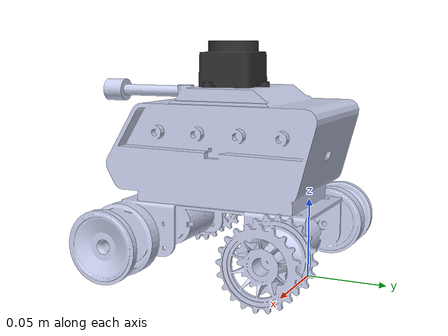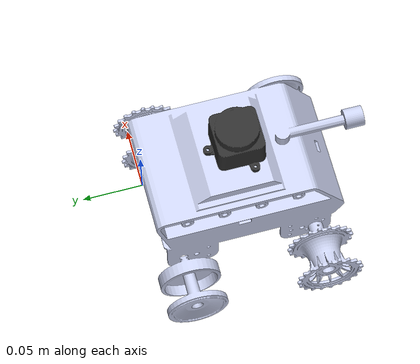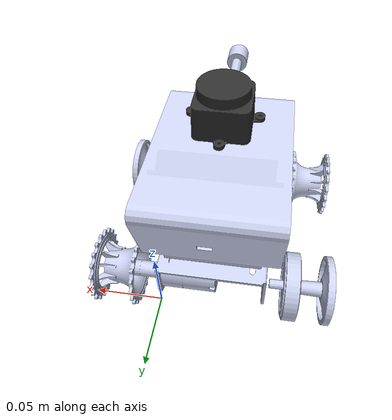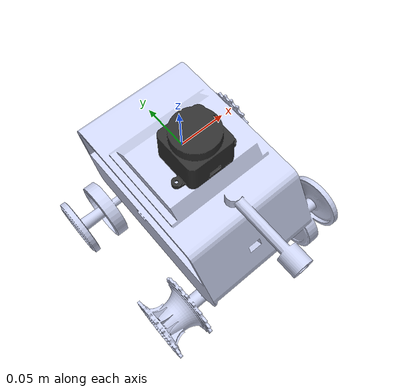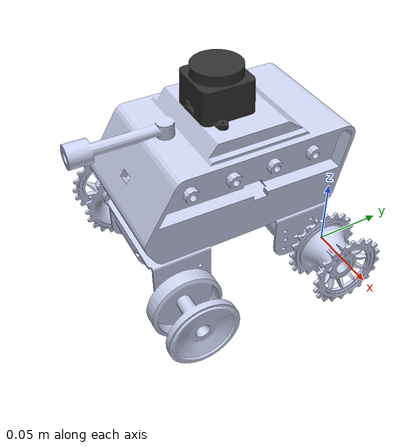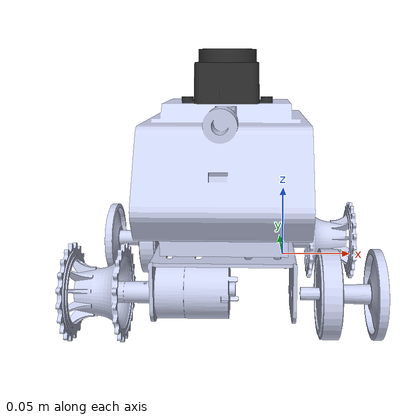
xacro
<?xml version="1.0"?>
<robot xmlns:xacro="http://www.ros.org/wiki/xacro" name="tanque">

  <!-- Define properties -->
  <xacro:property name="wheel_separation" value="0.7" />
  <xacro:property name="wheel_radius" value="0.025" />
  <xacro:property name="color_rgba" value="0.792156862745098 0.819607843137255 0.933333333333333 1" />
  <xacro:property name="dark_color_rgba" value="0.180392156862745 0.180392156862745 0.180392156862745 1" />
  <xacro:include filename="$(find mec_mobile_description)/urdf/control/tank_robot.gazebo"/>

  <!-- Base link -->
  <xacro:macro name="base_link" params="">
    <link name="base_link">
      <inertial>
        <origin xyz="-0.0374465940598886 -0.0690310743778639 0.0558880866808287" rpy="0 0 0" />
        <mass value="0.417099374990471" />
        <inertia
          ixx="0.000722351549815063" ixy="1.62332665545551E-06" ixz="3.11612693032546E-06"
          iyy="0.000404208619519167" iyz="-2.03306255326123E-05" izz="0.000904108489026081" />
      </inertial>
      <visual>
        <origin xyz="0 0 0" rpy="0 0 0" />
        <geometry>
          <mesh filename="file://$(find mec_mobile_description)/meshes/robot_tank/base_link.STL" />
        </geometry>
        <material name="">
          <color rgba="${color_rgba}" />
        </material>
      </visual>
      <collision>
        <origin xyz="0 0 0" rpy="0 0 0" />
        <geometry>
          <mesh filename="file://$(find mec_mobile_description)/meshes/robot_tank/base_link.STL" />
        </geometry>
      </collision>
    </link>
  </xacro:macro>

  <!-- Wheel -->
  <xacro:macro name="wheel" params="name xyz rpy parent_link mesh_file">
    <link name="${name}_Link">
      <inertial>
        <origin xyz="0 0 0.00608657321281263" rpy="0 0 0" />
        <mass value="0.0148833367293959" />
        <inertia
          ixx="2.87985049038713E-06" ixy="1.33235120631602E-09" ixz="7.78715693348932E-10"
          iyy="2.87526106782234E-06" iyz="-2.89204738153876E-09" izz="3.16386827888893E-06" />
      </inertial>
      <visual>
        <origin xyz="0 0 0" rpy="0 0 0" />
        <geometry>
          <mesh filename="${mesh_file}" />
        </geometry>
        <material name="">
          <color rgba="${color_rgba}" />
        </material>
      </visual>
      <collision>
        <origin xyz="0 0 0" rpy="0 0 0" />
        <geometry>
          <mesh filename="${mesh_file}" />
        </geometry>
      </collision>
    </link>
    <joint name="${name}_Joint" type="continuous">
      <origin xyz="${xyz}" rpy="${rpy}" />
      <parent link="${parent_link}" />
      <child link="${name}_Link" />
      <axis xyz="0 0 -1" />
    </joint>
  </xacro:macro>

  <!-- Sensor -->
  <xacro:macro name="sensor" params="name xyz rpy parent_link mesh_file color">
    <link name="${name}_Link">
      <inertial>
        <origin xyz="0 0 0" rpy="0 0 0" />
        <mass value="0.0411937029806142" />
        <inertia
          ixx="5.44781056499557E-06" ixy="5.35543585740574E-11" ixz="-9.43324892496492E-14"
          iyy="9.17865415296578E-06" iyz="-8.25699468096667E-09" izz="5.52254044439159E-06" />
      </inertial>
      <visual>
        <origin xyz="0 0 0" rpy="0 0 0" />
        <geometry>
          <mesh filename="${mesh_file}" />
        </geometry>
        <material name="">
          <color rgba="${color}" />
        </material>
      </visual>
      <collision>
        <origin xyz="0 0 0" rpy="0 0 0" />
        <geometry>
          <mesh filename="${mesh_file}" />
        </geometry>
      </collision>
    </link>
    <joint name="${name}_Joint" type="fixed">
      <origin xyz="${xyz}" rpy="${rpy}" />
      <parent link="${parent_link}" />
      <child link="${name}_Link" />
    </joint>
  </xacro:macro>

  <!-- Base -->
  <xacro:base_link />

  <!-- Wheels -->
  <xacro:wheel name="RuedaDerecha" xyz="-0.111525 -0.124899748748477 0.0152499987374296" rpy="1.5707963267949 0 1.5707963267949" parent_link="base_link" mesh_file="file://$(find mec_mobile_description)/meshes/robot_tank/RuedaDerecha_Link.STL" />
  <xacro:wheel name="RuedaIzquierda" xyz="0.036525 -0.015100251251523 0.0152499987374295" rpy="-1.5707963267949 0 1.5707963267949" parent_link="base_link" mesh_file="file://$(find mec_mobile_description)/meshes/robot_tank/RuedaIzquierda_Link.STL" />

  <!-- Lidar -->
  <xacro:sensor name="Lidar" xyz="-0.0375 -0.0698739346599975 0.1406" rpy="1.5707963267949 0 0" parent_link="base_link" mesh_file="file://$(find mec_mobile_description)/meshes/robot_tank/Lidar_Link.STL" color="${dark_color_rgba}" />

</robot>
